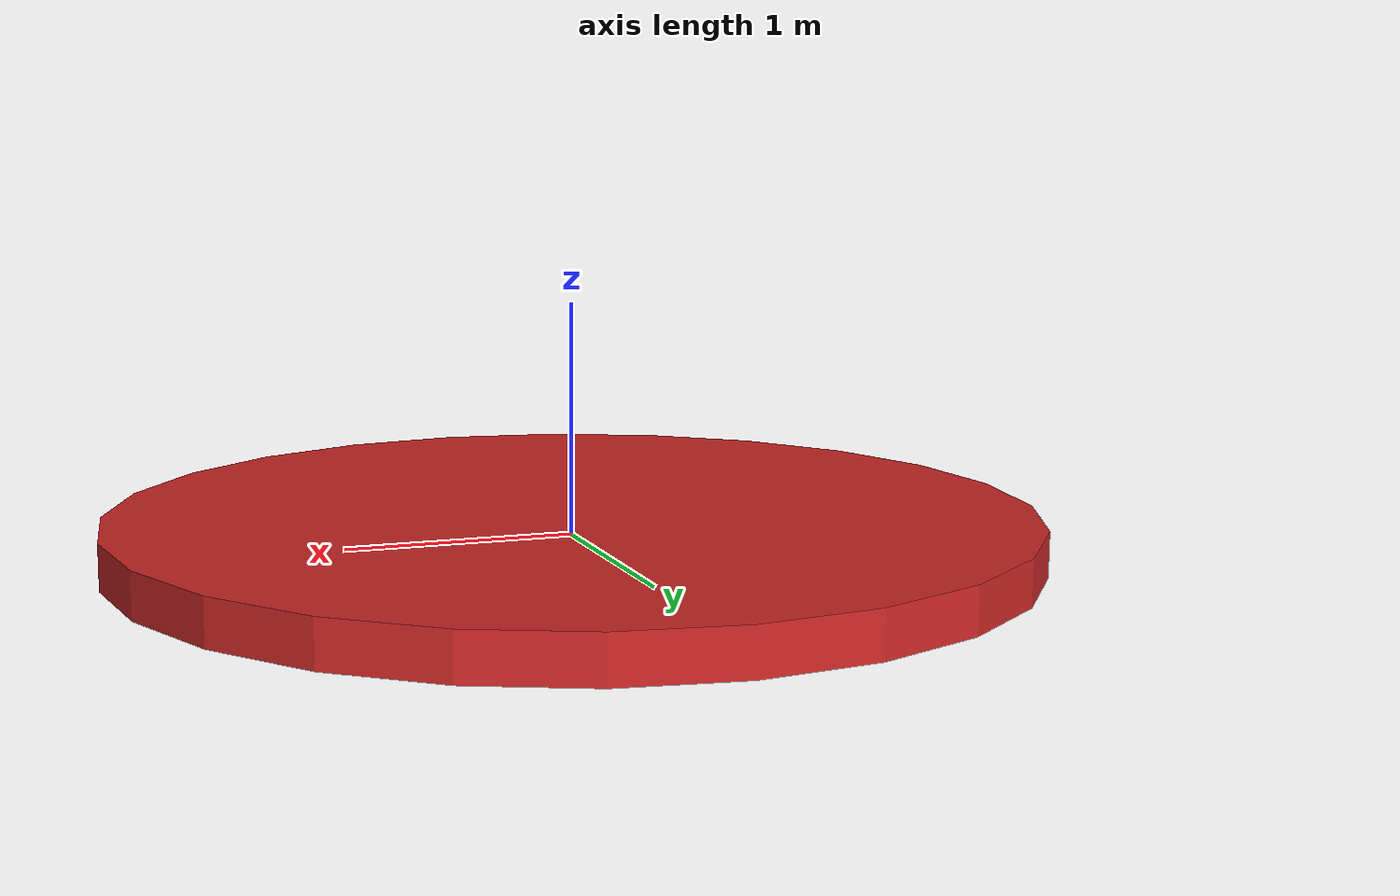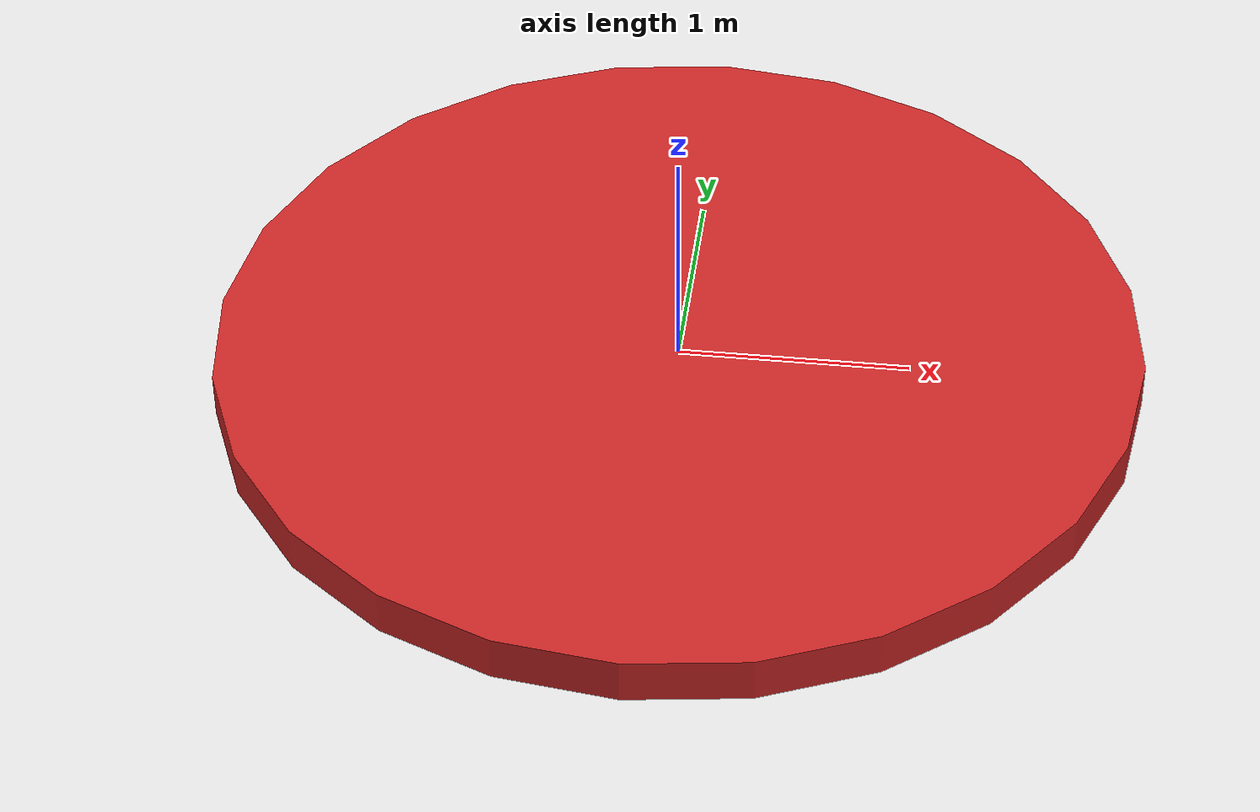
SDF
<?xml version='1.0'?>
<sdf version='1.7'>
  <model name='pos_d'>
    <link name='link'>
      <inertial>
        <mass>0.0785398</mass>
        <inertia>
          <ixx>0.0114537</ixx>
          <ixy>0</ixy>
          <ixz>0</ixz>
          <iyy>0.0114537</iyy>
          <iyz>0</iyz>
          <izz>0.00981748</izz>
        </inertia>
        <pose>0 0 0 0 -0 0</pose>
      </inertial>
      <self_collide>0</self_collide>
      <enable_wind>0</enable_wind>
      <kinematic>0</kinematic>
      <pose>0 0 0 0 -0 0</pose>
      <gravity>0</gravity>
      <visual name='visual'>
        <geometry>
          <cylinder>
            <radius>2.01</radius>
            <length>0.2</length>
          </cylinder>
        </geometry>
        <material>
          <script>
            <name>Gazebo/Red</name>
            <uri>file://media/materials/scripts/gazebo.material</uri>
          </script>
          <shader type='pixel'>
            <normal_map>__default__</normal_map>
          </shader>
         <ambient>1.0 0.0 0.0 0.5</ambient> <!-- Componente ambiental rojo (RGBA) -->
          <diffuse>1.0 0.0 0.0 0.5</diffuse> <!-- Componente difuso rojo (RGBA) -->
          <transparency>0.5</transparency> <!-- Nivel de transparencia (0.0 a 1.0) -->

        </material>
        <pose>0 0 0 0 -0 0</pose>
        <transparency>0</transparency>
        <cast_shadows>1</cast_shadows>
      </visual>
    </link>
    <static>0</static>
    <allow_auto_disable>1</allow_auto_disable>
  </model>
</sdf>
